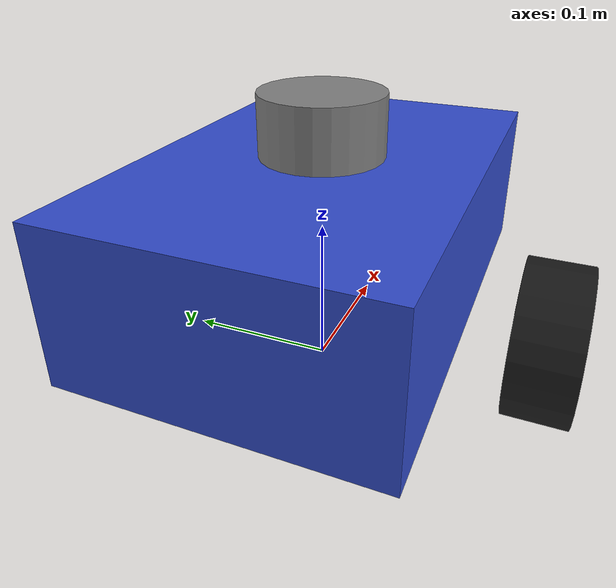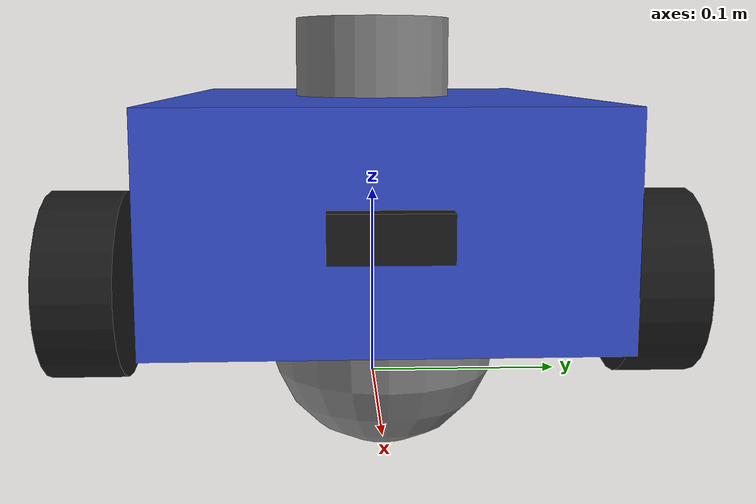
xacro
<?xml version="1.0"?>
<robot name="my_robot" xmlns:xacro="http://ros.org/wiki/xacro">

  <xacro:property name="base_length"     value="0.30"/>
  <xacro:property name="base_width"      value="0.20"/>
  <xacro:property name="base_height"     value="0.10"/>
  <xacro:property name="wheel_radius"    value="0.05"/>
  <xacro:property name="wheel_width"     value="0.04"/>
  <xacro:property name="wheel_separation" value="0.30"/>
  <xacro:property name="caster_radius"   value="${wheel_radius}"/>

  <material name="blue"><color rgba="0.2 0.3 0.8 1.0"/></material>
  <material name="black"><color rgba="0.1 0.1 0.1 1.0"/></material>
  <material name="grey"><color rgba="0.5 0.5 0.5 1.0"/></material>

  <link name="base_footprint"/>

  <joint name="base_joint" type="fixed">
    <parent link="base_footprint"/>
    <child link="base_link"/>
    <origin xyz="0 0 ${wheel_radius}" rpy="0 0 0"/>
  </joint>

  <link name="base_link">
    <visual>
      <origin xyz="0 0 ${base_height/2}" rpy="0 0 0"/>
      <geometry><box size="${base_length} ${base_width} ${base_height}"/></geometry>
      <material name="blue"/>
    </visual>
    <collision>
      <origin xyz="0 0 ${base_height/2}" rpy="0 0 0"/>
      <geometry><box size="${base_length} ${base_width} ${base_height}"/></geometry>
    </collision>
    <inertial>
      <origin xyz="0 0 ${base_height/2}" rpy="0 0 0"/>
      <mass value="1.0"/>
      <inertia ixx="0.004167" ixy="0" ixz="0" iyy="0.008333" iyz="0" izz="0.010833"/>
    </inertial>
  </link>

  <xacro:macro name="wheel" params="prefix y_reflect">
    <link name="${prefix}_wheel">
      <visual>
        <origin xyz="0 0 0" rpy="1.5708 0 0"/>
        <geometry><cylinder radius="${wheel_radius}" length="${wheel_width}"/></geometry>
        <material name="black"/>
      </visual>
      <collision>
        <origin xyz="0 0 0" rpy="1.5708 0 0"/>
        <geometry><cylinder radius="${wheel_radius}" length="${wheel_width}"/></geometry>
      </collision>
      <inertial>
        <origin xyz="0 0 0" rpy="1.5708 0 0"/>
        <mass value="0.1"/>
        <inertia ixx="0.0000758" ixy="0" ixz="0" iyy="0.0000758" iyz="0" izz="0.000125"/>
      </inertial>
    </link>
    <joint name="${prefix}_wheel_joint" type="continuous">
      <parent link="base_link"/>
      <child link="${prefix}_wheel"/>
      <origin xyz="0 ${y_reflect * wheel_separation/2} 0" rpy="0 0 0"/>
      <axis xyz="0 1 0"/>
    </joint>
  </xacro:macro>

  <xacro:wheel prefix="left"  y_reflect="1"/>
  <xacro:wheel prefix="right" y_reflect="-1"/>

  <link name="caster">
    <visual><geometry><sphere radius="${caster_radius}"/></geometry><material name="grey"/></visual>
    <collision><geometry><sphere radius="${caster_radius}"/></geometry></collision>
    <inertial>
      <mass value="0.05"/>
      <inertia ixx="0.00005" ixy="0" ixz="0" iyy="0.00005" iyz="0" izz="0.00005"/>
    </inertial>
  </link>

  <joint name="caster_joint" type="fixed">
    <parent link="base_link"/>
    <child link="caster"/>
    <origin xyz="${base_length/2 - caster_radius} 0 0" rpy="0 0 0"/>
  </joint>

  <link name="lidar_link">
    <visual><geometry><cylinder radius="0.04" length="0.04"/></geometry><material name="grey"/></visual>
    <collision><geometry><cylinder radius="0.04" length="0.04"/></geometry></collision>
    <inertial>
      <mass value="0.1"/>
      <inertia ixx="0.0000533" ixy="0" ixz="0" iyy="0.0000533" iyz="0" izz="0.00008"/>
    </inertial>
  </link>

  <joint name="lidar_joint" type="fixed">
    <parent link="base_link"/>
    <child link="lidar_link"/>
    <origin xyz="0 0 ${base_height + 0.02}" rpy="0 0 0"/>
  </joint>

  <link name="camera_link">
    <visual><geometry><box size="0.02 0.05 0.02"/></geometry><material name="black"/></visual>
    <collision><geometry><box size="0.02 0.05 0.02"/></geometry></collision>
    <inertial>
      <mass value="0.05"/>
      <inertia ixx="0.00001" ixy="0" ixz="0" iyy="0.00001" iyz="0" izz="0.00001"/>
    </inertial>
  </link>

  <joint name="camera_joint" type="fixed">
    <parent link="base_link"/>
    <child link="camera_link"/>
    <origin xyz="${base_length/2} 0 ${base_height/2}" rpy="0 0 0"/>
  </joint>

  <ros2_control name="GazeboSimSystem" type="system">
    <hardware>
      <plugin>gz_ros2_control/GazeboSimSystem</plugin>
    </hardware>
    <joint name="left_wheel_joint">
      <command_interface name="velocity">
        <param name="min">-10.0</param>
        <param name="max">10.0</param>
      </command_interface>
      <state_interface name="position"/>
      <state_interface name="velocity"/>
    </joint>
    <joint name="right_wheel_joint">
      <command_interface name="velocity">
        <param name="min">-10.0</param>
        <param name="max">10.0</param>
      </command_interface>
      <state_interface name="position"/>
      <state_interface name="velocity"/>
    </joint>
  </ros2_control>

  <gazebo reference="lidar_link">
    <sensor name="lidar" type="gpu_lidar">
      <topic>scan</topic>
      <gz_frame_id>lidar_link</gz_frame_id>
      <update_rate>10</update_rate>
      <always_on>1</always_on>
      <visualize>true</visualize>
      <lidar>
        <scan>
          <horizontal>
            <samples>360</samples>
            <resolution>1</resolution>
            <min_angle>-3.14159</min_angle>
            <max_angle>3.14159</max_angle>
          </horizontal>
          <vertical>
            <samples>1</samples>
            <resolution>1</resolution>
            <min_angle>0</min_angle>
            <max_angle>0</max_angle>
          </vertical>
        </scan>
        <range>
          <min>0.12</min>
          <max>10.0</max>
          <resolution>0.01</resolution>
        </range>
        <noise>
          <type>gaussian</type>
          <mean>0.0</mean>
          <stddev>0.01</stddev>
        </noise>
      </lidar>
    </sensor>
  </gazebo>

  <gazebo reference="camera_link">
    <sensor name="camera" type="camera">
      <topic>image</topic>
      <gz_frame_id>camera_link</gz_frame_id>
      <update_rate>15</update_rate>
      <always_on>1</always_on>
      <visualize>true</visualize>
      <camera>
        <horizontal_fov>1.047</horizontal_fov>
        <image>
          <width>640</width>
          <height>480</height>
          <format>R8G8B8</format>
        </image>
        <clip>
          <near>0.1</near>
          <far>100</far>
        </clip>
      </camera>
    </sensor>
  </gazebo>

  <gazebo>
    <plugin filename="gz_ros2_control-system" name="gz_ros2_control::GazeboSimROS2ControlPlugin">
      <parameters>/home/vasu0/slam_ws/install/my_robot/share/my_robot/config/controllers.yaml</parameters>
    </plugin>
  </gazebo>

</robot>
